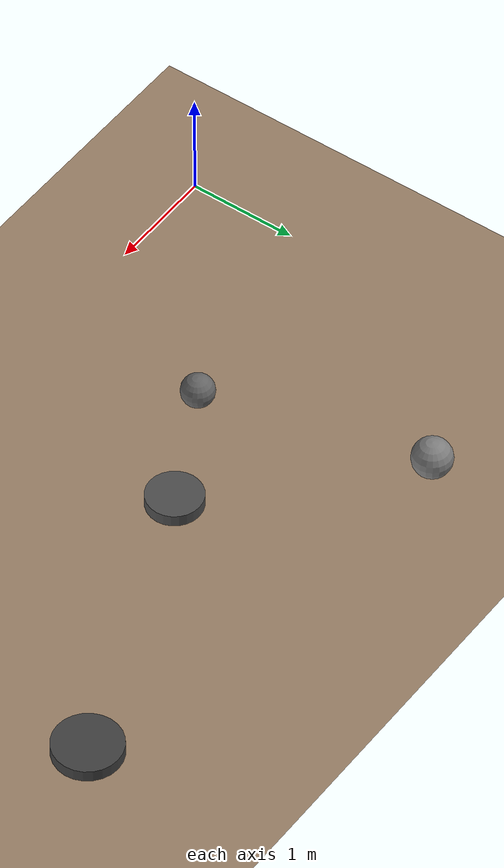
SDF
<sdf version="1.7">
  <world name="obstacle_arena">

    <!-- Sun light -->
    <light name="sun" type="directional">
      <cast_shadows>1</cast_shadows>
      <pose>0 0 10 0 0 0</pose>
      <diffuse>0.8 0.8 0.8 1</diffuse>
      <specular>0.2 0.2 0.2 1</specular>
      <attenuation>
        <range>1000</range>
        <constant>0.9</constant>
        <linear>0.01</linear>
        <quadratic>0.001</quadratic>
      </attenuation>
      <direction>-0.5 0.1 -0.9</direction>
    </light>

    <!-- Ground Plane -->
    <model name="ground_plane">
      <static>1</static>
      <link name="link">
        <collision name="collision">
          <geometry>
            <plane>
              <normal>0 0 1</normal>
              <size>10 10</size>
            </plane>
          </geometry>
        </collision>
        <visual name="visual">
          <geometry>
            <plane>
              <normal>0 0 1</normal>
              <size>10 10</size>
            </plane>
          </geometry>
          <material>
            <ambient>0.6 0.5 0.4 1</ambient>
            <diffuse>0.6 0.5 0.4 1</diffuse>
          </material>
        </visual>
      </link>
    </model>

    <!-- Boulders are spheres: 0.15m and 0.18m radius (~30 to 36cm diameter) -->
    <!-- Boulder 1 -->
    <model name="boulder_1">
      <pose>2.0 1.5 0.15 0 0 0</pose> <!-- x, y, z, roll, pitch, yaw -->
      <static>1</static>
      <link name="link">
        <visual name="visual">
          <geometry>
            <sphere>
              <radius>0.15</radius>
            </sphere>
          </geometry>
          <material>
            <ambient>0.4 0.4 0.4 1</ambient>
            <diffuse>0.4 0.4 0.4 1</diffuse>
          </material>
        </visual>
        <collision name="collision">
          <geometry>
            <sphere>
              <radius>0.15</radius>
            </sphere>
          </geometry>
        </collision>
        <inertial>
          <mass>5</mass>
        </inertial>
      </link>
    </model>

    <!-- Boulder 2 -->
    <model name="boulder_2">
      <pose>1.5 3.5 0.18 0 0 0</pose>
      <static>1</static>
      <link name="link">
        <visual name="visual">
          <geometry>
            <sphere>
              <radius>0.18</radius>
            </sphere>
          </geometry>
          <material>
            <ambient>0.5 0.5 0.5 1</ambient>
            <diffuse>0.5 0.5 0.5 1</diffuse>
          </material>
        </visual>
        <collision name="collision">
          <geometry>
            <sphere>
              <radius>0.18</radius>
            </sphere>
          </geometry>
        </collision>
        <inertial>
          <mass>6</mass>
        </inertial>
      </link>
    </model>

    <!-- Craters are cylinders with depth 0.215m (~21.5cm) to simulate sand depth -->
    <!-- Crater 1 -->
    <model name="crater_1">
      <pose>3.0 2.0 0 0 0 0</pose>
      <static>1</static>
      <link name="link">
        <visual name="visual">
          <geometry>
            <cylinder>
              <radius>0.25</radius>
              <length>0.215</length>
            </cylinder>
          </geometry>
          <material>
            <ambient>0.3 0.3 0.3 1</ambient>
            <diffuse>0.3 0.3 0.3 1</diffuse>
          </material>
        </visual>
        <collision name="collision">
          <geometry>
            <cylinder>
              <radius>0.25</radius>
              <length>0.215</length>
            </cylinder>
          </geometry>
        </collision>
        <inertial>
          <mass>1</mass>
        </inertial>
      </link>
    </model>

    <!-- Crater 2 -->
    <model name="crater_2">
      <pose>5.5 3.0 0 0 0 0</pose>
      <static>1</static>
      <link name="link">
        <visual name="visual">
          <geometry>
            <cylinder>
              <radius>0.3</radius>
              <length>0.215</length>
            </cylinder>
          </geometry>
          <material>
            <ambient>0.25 0.25 0.25 1</ambient>
            <diffuse>0.25 0.25 0.25 1</diffuse>
          </material>
        </visual>
        <collision name="collision">
          <geometry>
            <cylinder>
              <radius>0.3</radius>
              <length>0.215</length>
            </cylinder>
          </geometry>
        </collision>
        <inertial>
          <mass>1</mass>
        </inertial>
      </link>
    </model>

    <!-- Positions are chosen inside the 7.9m by 4.4m arena. You can tweak pose for testing different obstacle layouts -->

    <!-- Physics -->
    <physics type="ode">
      <max_step_size>0.001</max_step_size>
      <real_time_factor>1</real_time_factor>
      <real_time_update_rate>1000</real_time_update_rate>
      <gravity>0 0 -9.81</gravity>
    </physics>

    <!-- Scene -->
    <scene>
      <ambient>0.4 0.4 0.4 1</ambient>
      <background>0.7 0.7 0.7 1</background>
      <shadows>1</shadows>
    </scene>

  </world>
</sdf>
